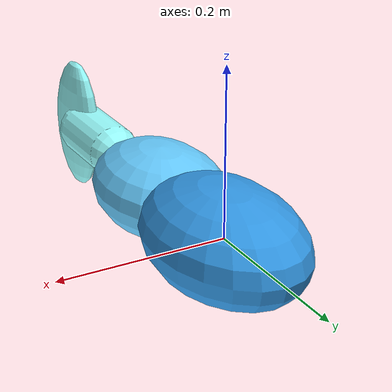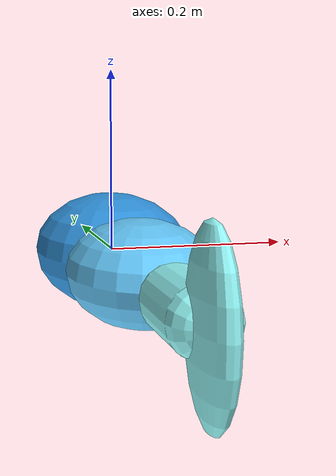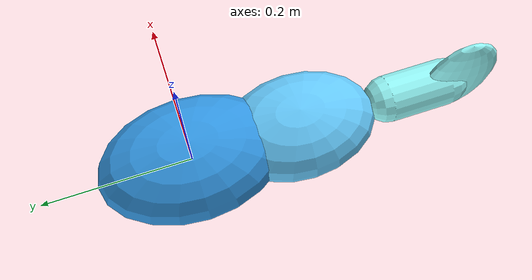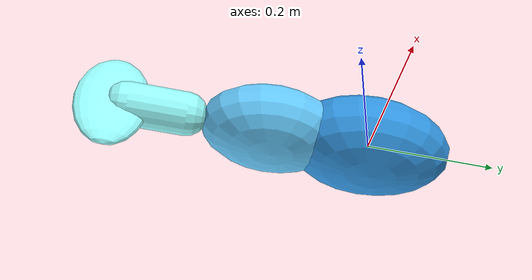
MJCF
<mujoco model="Fish3D_Swimmer">

    <compiler angle="degree" inertiafromgeom="true"/>
    <option timestep="0.001" gravity="0 0 0" integrator="RK4"/>

    <default>
        <joint damping="0.1" stiffness="0" armature="0.01"/>
        <motor ctrlrange="-1 1" ctrllimited="true"/>
        <geom solref="0.001 1" solimp="0.9 0.95 0.001"/>
    </default>

    <asset>
        <material name="head_mat" rgba="0.2 0.6 0.9 1"/>
        <material name="body_mat" rgba="0.4 0.8 1.0 1"/>
        <material name="tail_mat" rgba="0.6 1.0 1.0 1"/>
    </asset>

    <worldbody>
        <!-- Root head with a free joint and 6 DOF. -->
        <body name="head" pos="0 0 0">
            <freejoint name="root_joint"/>

        <!-- Streamlined ellipsoid head. -->
            <geom name="head_geom" type="ellipsoid"
                  size="0.084 0.126 0.063"
                  pos="0 0 0"
                  material="head_mat"
                  density="500"/>

            <!-- Mid-body with three independent hinge joints. -->
            <body name="body" pos="0 -0.147 0">
                <!-- Pitch around x. -->
                <joint name="joint1_pitch" type="hinge" axis="1 0 0" limited="true" range="-15 15"/>
                <!-- Roll around y. -->
                <joint name="joint1_roll" type="hinge" axis="0 1 0" limited="true" range="-10 10"/>
                <!-- Propulsive yaw around z. -->
                <joint name="joint1_yaw" type="hinge" axis="0 0 1" limited="true" range="-60 60"/>

                <!-- Ellipsoid body geometry. -->
                <geom name="body_geom" type="ellipsoid"
                      size="0.074 0.105 0.053"
                      pos="0 0 0"
                      material="body_mat"
                      density="500"/>

                <!-- Tail with three independent hinge joints. -->
                <body name="tail" pos="0 -0.126 0">
                    <!-- Pitch around x. -->
                    <joint name="joint2_pitch" type="hinge" axis="1 0 0" limited="true" range="-15 15"/>
                    <!-- Roll around y. -->
                    <joint name="joint2_roll" type="hinge" axis="0 1 0" limited="true" range="-10 10"/>
                    <!-- Main tail yaw around z. -->
                    <joint name="joint2_yaw" type="hinge" axis="0 0 1" limited="true" range="-60 60"/>

                    <!-- Slender tail peduncle. -->
                    <geom name="tail_stem" type="capsule"
                          fromto="0 0 0 0 -0.084 0"
                          size="0.032"
                          material="tail_mat"
                          density="500"/>

                    <!-- Flat vertical tail fin for lateral propulsion. -->
                    <geom name="tail_fin" type="ellipsoid"
                          size="0.017 0.053 0.084"
                          pos="0 -0.105 0"
                          material="tail_mat"
                          density="500"/>
                </body>
            </body>
        </body>
    </worldbody>

    <actuator>
        <!-- Joint 1: head to body. -->
        <motor name="motor1_pitch" joint="joint1_pitch" gear="10" ctrlrange="-1 1"/>
        <motor name="motor1_roll" joint="joint1_roll" gear="10" ctrlrange="-1 1"/>
        <motor name="motor1_yaw" joint="joint1_yaw" gear="40" ctrlrange="-1 1"/>
        <!-- Joint 2: body to tail. -->
        <motor name="motor2_pitch" joint="joint2_pitch" gear="10" ctrlrange="-1 1"/>
        <motor name="motor2_roll" joint="joint2_roll" gear="10" ctrlrange="-1 1"/>
        <motor name="motor2_yaw" joint="joint2_yaw" gear="40" ctrlrange="-1 1"/>
    </actuator>
</mujoco>
